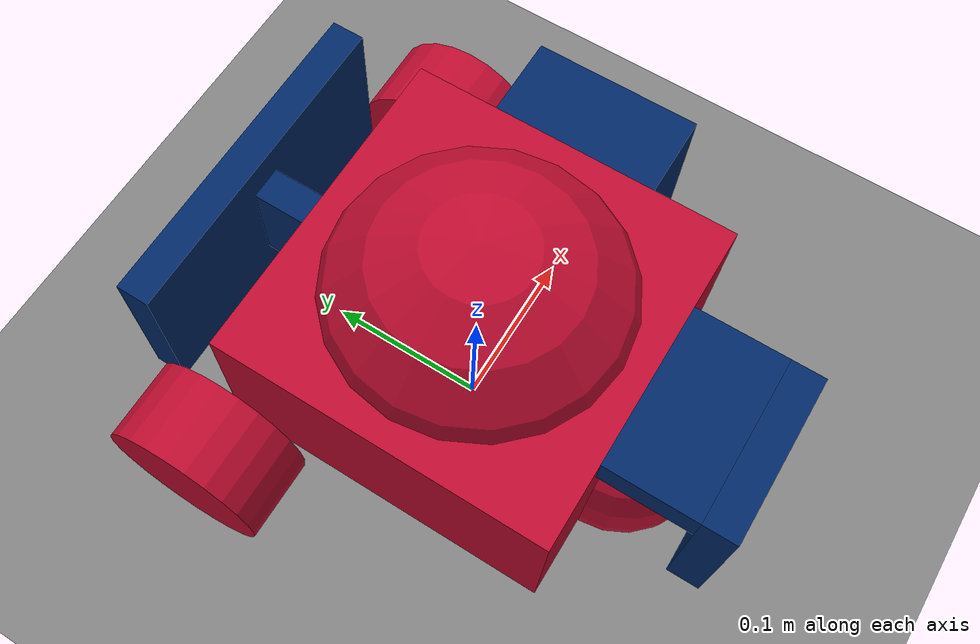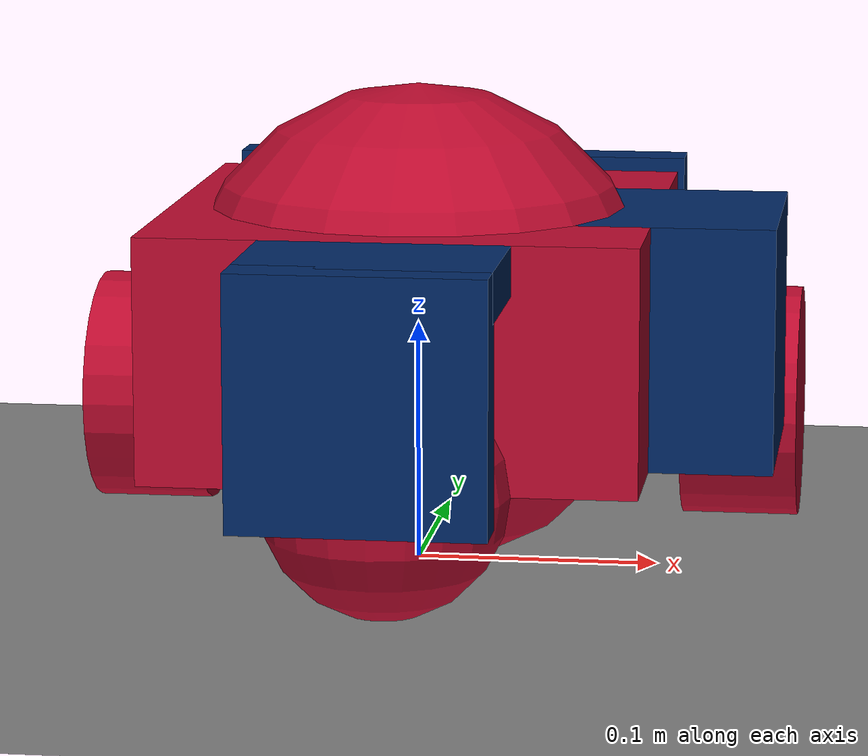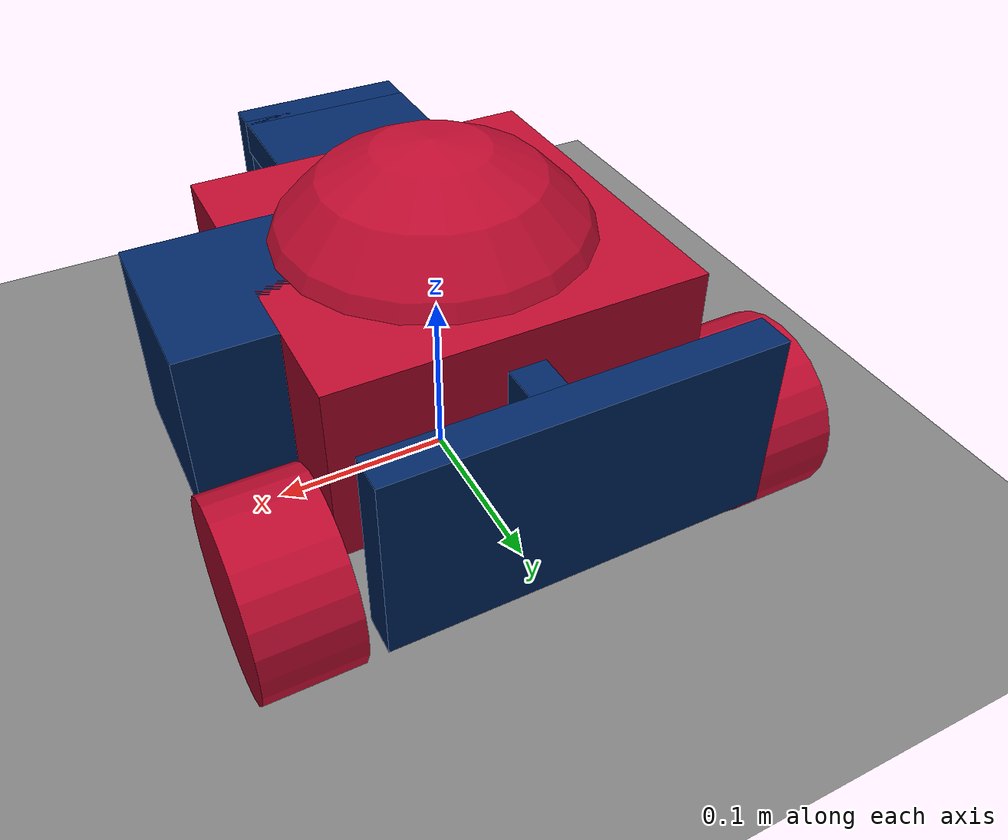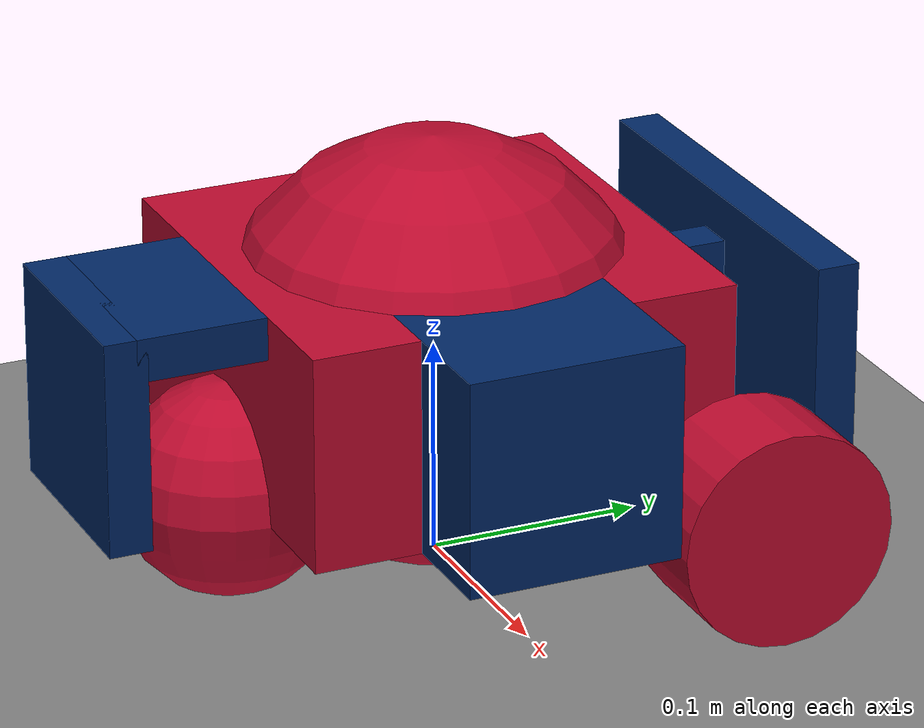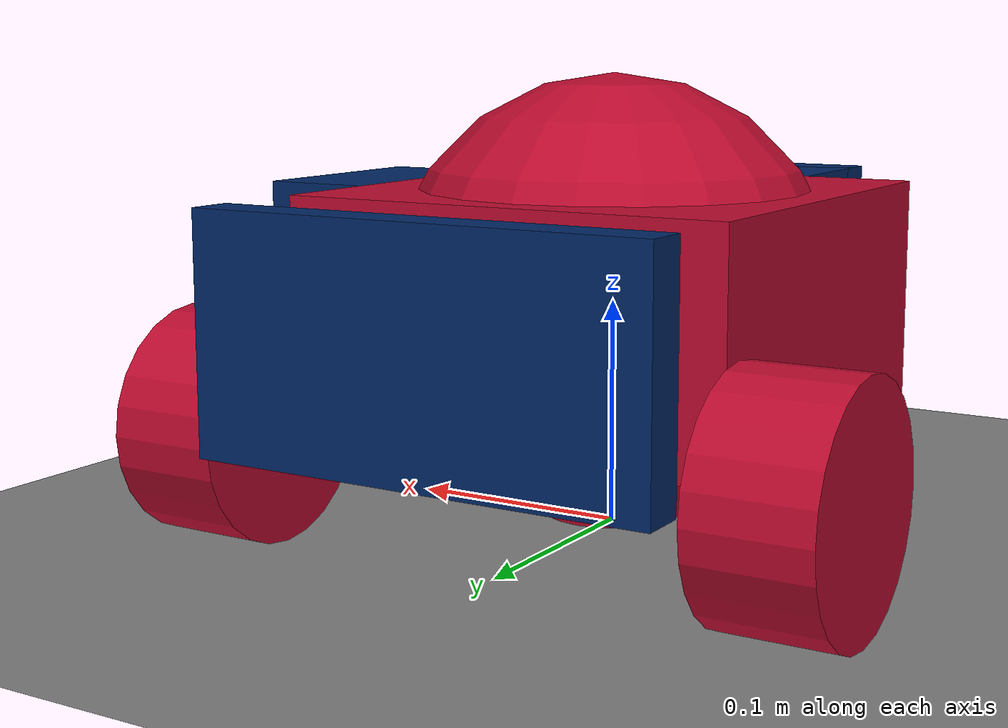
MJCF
<mujoco model="chase">
    <size njmax="3000" nconmax="1000" />
    <option timestep="0.002" />
    <statistic meansize="0.23" extent="3.96" />
    <default>
        <geom condim="6" density="1" />
        <joint damping=".001" />
        <velocity ctrlrange="-1 1" ctrllimited="true" forcerange="-.05 .05" forcelimited="true" />
        <motor ctrlrange="-1 1" ctrllimited="true" forcerange="-.02 .02" forcelimited="true" />
        <site size="0.032" type="sphere" />
    </default>
    <include file="scenes/chase_scene.xml" />
    <include file="agents/point.xml" />
    <include file="agents/car.xml" />
</mujoco>

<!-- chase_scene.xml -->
<mujocoinclude>
    <worldbody>
        <geom name="floor" size="5 5 0.1" type="plane" condim="6" />
    </worldbody>
</mujocoinclude>

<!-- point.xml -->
<mujoco>
    <size njmax="3000" nconmax="1000" />
    <option timestep="0.002" />
    <statistic meansize="0.23" extent="3.96" />
    <default>
        <geom condim="6" density="1" />
        <joint damping=".001" />
        <motor ctrlrange="-1 1" ctrllimited="true" forcerange="-.05 .05" forcelimited="true" />
        <velocity ctrlrange="-1 1" ctrllimited="true" forcerange="-.05 .05" forcelimited="true" />
        <site size="0.032" type="sphere" />
    </default>
    <worldbody>
        <body name="agent" pos="0 0 .1">
            <camera name="vision" pos="0 0 .15" xyaxes="0 -1 0 .4 0 1" fovy="90" />
            <camera name="vision_back" pos="0 0 .15" xyaxes="0 1 0 0 0 1" fovy="90" />
            <joint type="slide" axis="1 0 0" name="x" damping="0.01" />
            <joint type="slide" axis="0 1 0" name="y" damping="0.01" />
            <joint type="hinge" axis="0 0 1" name="z" damping="0.005" />
            <geom name="agent" type="sphere" size=".1" friction="1 0.01 0.01"
                rgba="0.7412 0.0431 0.1843 1" />
            <geom name="pointarrow" pos="0.1 0 0" size="0.05 0.05 0.05" type="box"
                rgba="0.0039 0.1529 0.3961 1" />
            <site name="agent" rgba="1 0 0 .1" />
        </body>
    </worldbody>
    <sensor>
        <!-- Used for observation -->
        <accelerometer site="agent" name="accelerometer" />
        <velocimeter site="agent" name="velocimeter" />
        <gyro site="agent" name="gyro" />
        <magnetometer site="agent" name="magnetometer" />

        <!-- Used for intrinsic constraints -->
        <subtreecom body="agent" name="subtreecom" />
        <subtreelinvel body="agent" name="subtreelinvel" />
        <subtreeangmom body="agent" name="subtreeangmom" />
    </sensor>
    <actuator>
        <motor gear="0.3 0 0 0 0 0" site="agent" name="x" />
        <velocity gear="0.3" jointinparent="z" name="z" />
    </actuator>
</mujoco>

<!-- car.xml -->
<mujoco>
    <size njmax="3000" nconmax="1000" />
    <option timestep="0.004" />
    <statistic meansize="0.23" extent="3.96" />
    <default>
        <geom condim="6" density="5" size=".05" type="sphere" />
        <joint damping=".001" />
        <motor ctrlrange="-1 1" ctrllimited="true" forcerange="-.02 .02" forcelimited="true" />
        <site size="0.032" type="sphere" />
    </default>
    <worldbody>
        <body name="agent" pos="0 0 .1">
            <site name="agent" pos="0 0 0" />
            <camera name="vision" pos="0 0 .2" xyaxes="-1 0 0 0 -.4 1" fovy="90" />
            <camera name="vision_back" pos="0 0 .2" xyaxes="1 0 0 0 0 1" fovy="90" />
            <joint type="free" name="agent" damping="0" />
            <geom name="agent" type="box" size=".1 .1 .05" rgba="0.7412 0.0431 0.1843 1" />
            <geom name="back_bumper" type="box" pos="0 .15 0" size=".1 .01 .05"
                rgba="0.0039 0.1529 0.3961 1" />
            <geom name="back_connector" type="box" pos="0 .125 0" size=".01 .025 .03"
                rgba="0.0039 0.1529 0.3961 1" />
            <geom name="front_bumper" type="box" pos="0 -.165 0" size=".05 .01 .05"
                rgba="0.0039 0.1529 0.3961 1" />
            <geom name="front_connector" type="box" pos="0 -.13 .04" size=".05 .03 .01"
                rgba="0.0039 0.1529 0.3961 1" />
            <body name="left" pos="-.1 .1 -.05">
                <joint type="hinge" name="left" axis="1 0 0" />
                <geom type="cylinder" name="left" fromto="-.055 0 0 -0.005 0 0"
                    rgba="0.7412 0.0431 0.1843 1" />
            </body>
            <body name="right" pos=".1 .1 -.05">
                <joint type="hinge" name="right" axis="1 0 0" />
                <geom type="cylinder" name="right" fromto="0.005 0 0 .055 0 0"
                    rgba="0.7412 0.0431 0.1843 1" />
            </body>
            <body name="rear" pos="0 -.1 -.05">
                <joint name="rear" type="ball" />
                <geom name="rear" rgba="0.7412 0.0431 0.1843 1" />
            </body>
        </body>
    </worldbody>
    <sensor>

        <ballquat joint="rear" name="ballquat_rear" />
        <ballangvel joint="rear" name="ballangvel_rear" />

        <!-- Used for observation -->
        <accelerometer site="agent" name="accelerometer" />
        <velocimeter site="agent" name="velocimeter" />
        <gyro site="agent" name="gyro" />
        <magnetometer site="agent" name="magnetometer" />

        <!-- Used for intrinsic constraints -->
        <subtreecom body="agent" name="subtreecom" />
        <subtreelinvel body="agent" name="subtreelinvel" />
        <subtreeangmom body="agent" name="subtreeangmom" />
    </sensor>
    <actuator>
        <motor gear="1" jointinparent="left" name="left" />
        <motor gear="1" jointinparent="right" name="right" />
    </actuator>
</mujoco>
